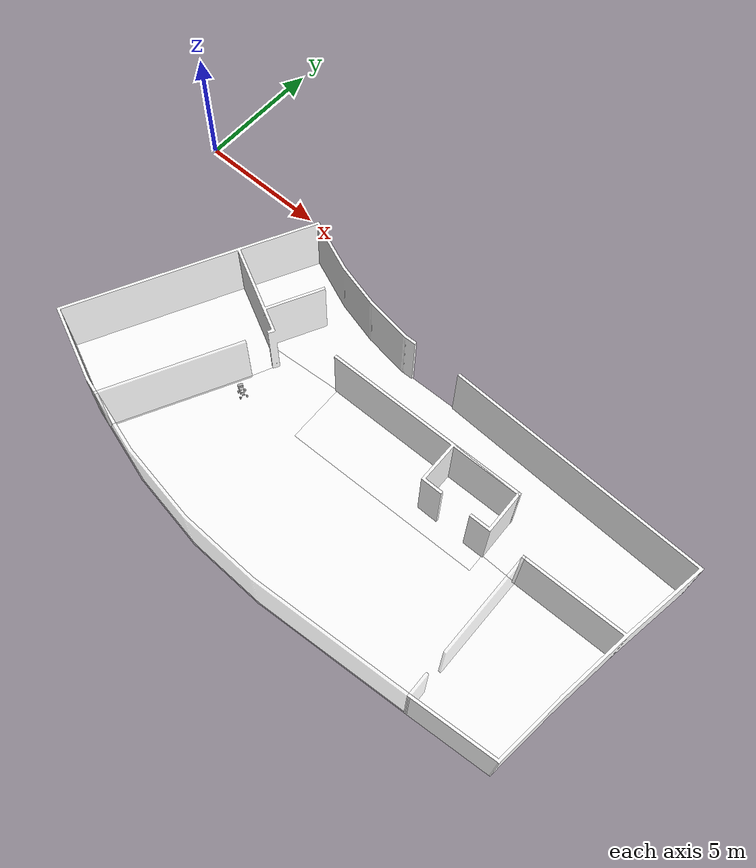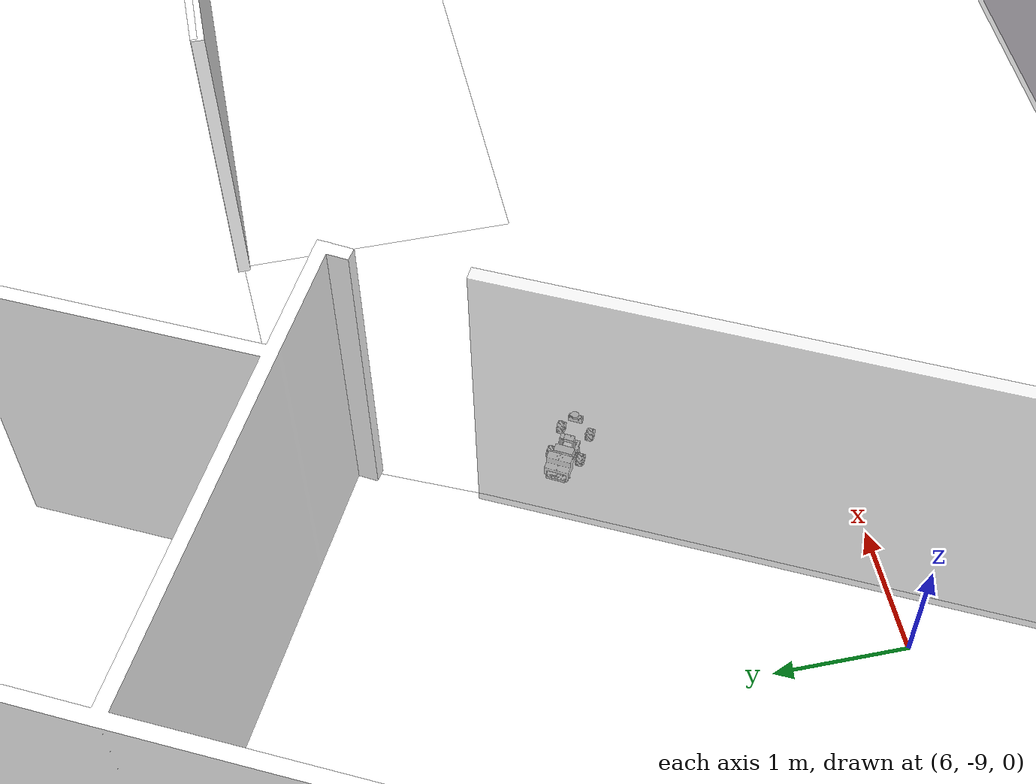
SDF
<sdf version="1.7">
 <world name="office">
  <physics name="1ms" type="ignored">
   <max_step_size>0.001</max_step_size>
   <real_time_factor>1.0</real_time_factor>
  </physics>
  <plugin filename="ignition-gazebo-physics-system" name="ignition::gazebo::systems::Physics"/>
  <plugin filename="libignition-gazebo-sensors-system.so" name="ignition::gazebo::systems::Sensors">
   <render_engine>ogre2</render_engine>
  </plugin>
  <plugin filename="ignition-gazebo-user-commands-system" name="ignition::gazebo::systems::UserCommands"/>
  <plugin filename="ignition-gazebo-scene-broadcaster-system" name="ignition::gazebo::systems::SceneBroadcaster"/>
  <plugin filename="libignition-gazebo-contact-system.so" name="ignition::gazebo::systems::Contact"/>
  <scene><ambient>1 1 1</ambient><background>0.8 0.8 0.8</background><grid>false</grid></scene>
  <light type="directional" name="sun">
   <pose>0 0 10 0 0 0</pose>
   <diffuse>1 1 1 1</diffuse>
   <specular>0.2 0.2 0.2 1</specular>
   <attenuation>
    <range>1000</range>
    <constant>0.09</constant>
    <linear>0.001</linear>
    <quadratic>0.001</quadratic>
   </attenuation>
   <direction>-0.5 0.1 -0.9</direction>
  </light>
  <include><name>building_L1</name><uri>model://building_L1</uri></include>
  <include>
   <name>mecanum_bot</name>
   <uri>model://mecanum_bot</uri>
   <pose>8.200888937515385 -7.009328201179764 0.1 0 0 -0.5159</pose>
   <static>false</static>
  </include>
 </world>
</sdf>

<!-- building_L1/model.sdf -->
<sdf version="1.7">
  <model name="building_L1">
    <static>true</static>
    <link name="floor_1">
      <visual name="visual">
        <geometry>
          <mesh>
            <uri>model://building_L1/meshes/floor_1.obj</uri>
          </mesh>
        </geometry>
        <material>
          <diffuse>1.0 1.0 1.0</diffuse>
          <specular>0.1 0.1 0.1</specular>
          <pbr>
            <metal>
              <metalness>0.0</metalness>
              <albedo_map>model://building_L1/meshes/blue_linoleum_high_contrast.png</albedo_map>
            </metal>
          </pbr>
          <script>
            <uri>model://building_L1/meshes/</uri>
            <name>floor_1_Diffuse</name>
          </script>
        </material>
      </visual>
      <collision name="collision">
        <geometry>
          <mesh>
            <uri>model://building_L1/meshes/floor_1.obj</uri>
          </mesh>
        </geometry>
        <surface>
          <contact>
            <collide_bitmask>0x01</collide_bitmask>
          </contact>
        </surface>
      </collision>
    </link>
    <link name="floor_2">
      <visual name="visual">
        <geometry>
          <mesh>
            <uri>model://building_L1/meshes/floor_2.obj</uri>
          </mesh>
        </geometry>
        <material>
          <diffuse>1.0 1.0 1.0</diffuse>
          <specular>0.1 0.1 0.1</specular>
          <pbr>
            <metal>
              <metalness>0.0</metalness>
              <albedo_map>model://building_L1/meshes/concrete2.png</albedo_map>
            </metal>
          </pbr>
          <script>
            <uri>model://building_L1/meshes/</uri>
            <name>floor_2_Diffuse</name>
          </script>
        </material>
      </visual>
      <collision name="collision">
        <geometry>
          <mesh>
            <uri>model://building_L1/meshes/floor_2.obj</uri>
          </mesh>
        </geometry>
        <surface>
          <contact>
            <collide_bitmask>0x01</collide_bitmask>
          </contact>
        </surface>
      </collision>
    </link>
    <link name="floor_3">
      <visual name="visual">
        <geometry>
          <mesh>
            <uri>model://building_L1/meshes/floor_3.obj</uri>
          </mesh>
        </geometry>
        <material>
          <diffuse>1.0 1.0 1.0</diffuse>
          <specular>0.1 0.1 0.1</specular>
          <pbr>
            <metal>
              <metalness>0.0</metalness>
              <albedo_map>model://building_L1/meshes/blue_linoleum_high_contrast.png</albedo_map>
            </metal>
          </pbr>
          <script>
            <uri>model://building_L1/meshes/</uri>
            <name>floor_3_Diffuse</name>
          </script>
        </material>
      </visual>
      <collision name="collision">
        <geometry>
          <mesh>
            <uri>model://building_L1/meshes/floor_3.obj</uri>
          </mesh>
        </geometry>
        <surface>
          <contact>
            <collide_bitmask>0x01</collide_bitmask>
          </contact>
        </surface>
      </collision>
    </link>
    <link name="floor_4">
      <visual name="visual">
        <geometry>
          <mesh>
            <uri>model://building_L1/meshes/floor_4.obj</uri>
          </mesh>
        </geometry>
        <material>
          <diffuse>1.0 1.0 1.0</diffuse>
          <specular>0.1 0.1 0.1</specular>
          <pbr>
            <metal>
              <metalness>0.0</metalness>
              <albedo_map>model://building_L1/meshes/black_concrete.png</albedo_map>
            </metal>
          </pbr>
          <script>
            <uri>model://building_L1/meshes/</uri>
            <name>floor_4_Diffuse</name>
          </script>
        </material>
      </visual>
      <collision name="collision">
        <geometry>
          <mesh>
            <uri>model://building_L1/meshes/floor_4.obj</uri>
          </mesh>
        </geometry>
        <surface>
          <contact>
            <collide_bitmask>0x01</collide_bitmask>
          </contact>
        </surface>
      </collision>
    </link>
    <link name="wall_1">
      <visual name="wall_1">
        <geometry>
          <mesh>
            <uri>model://building_L1/meshes/wall_1.obj</uri>
          </mesh>
        </geometry>
        <transparency>0.0</transparency>
        <material>
          <diffuse>1.0 1.0 1.0</diffuse>
          <specular>0.1 0.1 0.1</specular>
          <pbr>
            <metal>
              <metalness>0.0</metalness>
              <albedo_map>model://building_L1/meshes/wall_white.png</albedo_map>
            </metal>
          </pbr>
          <script>
            <uri>model://building_L1/meshes/</uri>
            <name>wall_1_Diffuse</name>
          </script>
        </material>
      </visual>
      <collision name="collision">
        <geometry>
          <mesh>
            <uri>model://building_L1/meshes/wall_1.obj</uri>
          </mesh>
        </geometry>
        <surface>
          <contact>
            <collide_bitmask>0x01</collide_bitmask>
          </contact>
        </surface>
      </collision>
      <pose>2.2104525034268714 -11.594893332298748 0 0 0 0</pose>
    </link>
    <link name="wall_2">
      <visual name="wall_2">
        <geometry>
          <mesh>
            <uri>model://building_L1/meshes/wall_2.obj</uri>
          </mesh>
        </geometry>
        <transparency>0.5</transparency>
        <material>
          <diffuse>1.0 1.0 1.0</diffuse>
          <specular>0.1 0.1 0.1</specular>
          <pbr>
            <metal>
              <metalness>0.0</metalness>
              <albedo_map>model://building_L1/meshes/wall_white.png</albedo_map>
            </metal>
          </pbr>
          <script>
            <uri>model://building_L1/meshes/</uri>
            <name>wall_2_Diffuse</name>
          </script>
        </material>
      </visual>
      <collision name="collision">
        <geometry>
          <mesh>
            <uri>model://building_L1/meshes/wall_2.obj</uri>
          </mesh>
        </geometry>
        <surface>
          <contact>
            <collide_bitmask>0x01</collide_bitmask>
          </contact>
        </surface>
      </collision>
      <pose>5.505273654870084 -12.057908109495912 0 0 0 0</pose>
    </link>
    <link name="wall_3">
      <visual name="wall_3">
        <geometry>
          <mesh>
            <uri>model://building_L1/meshes/wall_3.obj</uri>
          </mesh>
        </geometry>
        <transparency>0.19999999999999996</transparency>
        <material>
          <diffuse>1.0 1.0 1.0</diffuse>
          <specular>0.1 0.1 0.1</specular>
          <pbr>
            <metal>
              <metalness>0.0</metalness>
              <albedo_map>model://building_L1/meshes/wall_white.png</albedo_map>
            </metal>
          </pbr>
          <script>
            <uri>model://building_L1/meshes/</uri>
            <name>wall_3_Diffuse</name>
          </script>
        </material>
      </visual>
      <collision name="collision">
        <geometry>
          <mesh>
            <uri>model://building_L1/meshes/wall_3.obj</uri>
          </mesh>
        </geometry>
        <surface>
          <contact>
            <collide_bitmask>0x01</collide_bitmask>
          </contact>
        </surface>
      </collision>
      <pose>5.499658357842799 -10.921386983607634 0 0 0 0</pose>
    </link>
    <link name="wall_4">
      <visual name="wall_4">
        <geometry>
          <mesh>
            <uri>model://building_L1/meshes/wall_4.obj</uri>
          </mesh>
        </geometry>
        <transparency>0.0</transparency>
        <material>
          <diffuse>1.0 1.0 1.0</diffuse>
          <specular>0.1 0.1 0.1</specular>
          <pbr>
            <metal>
              <metalness>0.0</metalness>
              <albedo_map>model://building_L1/meshes/blue_linoleum_high_contrast.png</albedo_map>
            </metal>
          </pbr>
          <script>
            <uri>model://building_L1/meshes/</uri>
            <name>wall_4_Diffuse</name>
          </script>
        </material>
      </visual>
      <collision name="collision">
        <geometry>
          <mesh>
            <uri>model://building_L1/meshes/wall_4.obj</uri>
          </mesh>
        </geometry>
        <surface>
          <contact>
            <collide_bitmask>0x01</collide_bitmask>
          </contact>
        </surface>
      </collision>
      <pose>10.549150932467981 -4.759113568297709 0 0 0 0</pose>
    </link>
  </model>
</sdf>

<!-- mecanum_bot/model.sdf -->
<sdf version="1.7">
  <model name="mecanum_bot">

    <link name="base_footprint">
    </link>

    <link name="base_link">
      <self_collide>false</self_collide>
      <inertial>
        <pose>-0.0010000044107437 0.0 0.04050000384449959 0.0 0.0 0.0</pose>
        <mass>5</mass>
        <inertia>
          <ixx>0.05</ixx>
          <ixy>0</ixy>
          <ixz>0</ixz>
          <iyy>0.05</iyy>
          <iyz>0</iyz>
          <izz>0.05</izz>
        </inertia>
      </inertial>
      <collision name ="Cube">
        <pose>-0.0010000044107437 0.0 0.04050000384449959 0.0 0.0 0.0</pose>
        <geometry>
          <box>
            <size>0.39200000195503235 0.1939999908208847 0.219000001168251038</size>
          </box>
        </geometry>
      </collision>
      <visual name="base_visual">
        <pose>0 0 0 0 -0 0</pose>
        <geometry>
          <mesh>
            <uri>package://mecanum_bot_description/mecanum_bot/meshes/mecanum_bot_chassis.obj</uri>
            <scale>1 1 1</scale>
          </mesh>
        </geometry>
      </visual>
    </link>

    <link name="front_left_wheel">
      <self_collide>false</self_collide>
      <pose>0.125 0.117 -0.041 0 0 0</pose>
      <inertial>
        <mass>0.2</mass>
        <inertia>
          <ixx>0.0001</ixx>
          <ixy>0</ixy>
          <ixz>0</ixz>
          <iyy>0.0001</iyy>
          <iyz>0</iyz>
          <izz>0.0001</izz>
        </inertia>
      </inertial>
      <visual name="front_left_wheel_visual">
        <pose>0 0 0 0 -0 0</pose>
        <geometry>
          <mesh>
            <uri>package://mecanum_bot_description/mecanum_bot/meshes/mecanum_bot_wheel.obj</uri>
            <scale>1 1 1</scale>
          </mesh>
        </geometry>
      </visual>
      <collision name="front_left_wheel_collision">
        <geometry>
          <sphere>
            <radius>0.05</radius>
          </sphere>
        </geometry>
        <surface>
          <friction>
            <ode>
              <mu>10.0</mu>
              <mu2>0.0</mu2>
              <slip1>0.0</slip1>
              <slip2>0.0</slip2>
              <fdir1 ignition:expressed_in="base_link">1 -1 0</fdir1>
            </ode>
          </friction>
          <contact>
            <ode>
              <soft_cfm>0</soft_cfm>
              <soft_erp>0.2</soft_erp>
              <kp>1e+5</kp>
              <kd>1</kd>
              <max_vel>0.01</max_vel>
              <min_depth>0.0001</min_depth>
            </ode>
          </contact>
        </surface>
      </collision>
    </link>

    <link name="rear_left_wheel">
      <self_collide>false</self_collide>
      <pose>-0.125 0.117 -0.041 0 0 0</pose>
      <inertial>
        <mass>0.2</mass>
        <inertia>
          <ixx>0.0001</ixx>
          <ixy>0</ixy>
          <ixz>0</ixz>
          <iyy>0.0001</iyy>
          <iyz>0</iyz>
          <izz>0.0001</izz>
        </inertia>
      </inertial>
      <visual name="rear_left_wheel_visual">
        <pose>0 0 0 0 -0 0</pose>
        <geometry>
          <mesh>
            <uri>package://mecanum_bot_description/mecanum_bot/meshes/mecanum_bot_wheel.obj</uri>
            <scale>1 1 1</scale>
          </mesh>
        </geometry>
      </visual>
      <collision name="rear_left_wheel_collision">
        <geometry>
          <sphere>
            <radius>0.05</radius>
          </sphere>
        </geometry>
        <surface>
          <friction>
            <ode>
              <mu>10.0</mu>
              <mu2>0.0</mu2>
              <slip1>0.0</slip1>
              <slip2>0.0</slip2>
              <fdir1 ignition:expressed_in="base_link">1 1 0</fdir1>
            </ode>
          </friction>
          <contact>
            <ode>
              <soft_cfm>0</soft_cfm>
              <soft_erp>0.2</soft_erp>
              <kp>1e+5</kp>
              <kd>1</kd>
              <max_vel>0.01</max_vel>
              <min_depth>0.0001</min_depth>
            </ode>
          </contact>
        </surface>
      </collision>
    </link>

    <link name="front_right_wheel">
      <self_collide>false</self_collide>
      <pose>0.125 -0.117 -0.041 0 0 0</pose>
      <inertial>
        <mass>0.2</mass>
        <inertia>
          <ixx>0.0001</ixx>
          <ixy>0</ixy>
          <ixz>0</ixz>
          <iyy>0.0001</iyy>
          <iyz>0</iyz>
          <izz>0.0001</izz>
        </inertia>
      </inertial>
      <visual name="front_right_wheel_visual">
        <pose>0 0 0 0 0 -3.14</pose>
        <geometry>
          <mesh>
            <uri>package://mecanum_bot_description/mecanum_bot/meshes/mecanum_bot_wheel.obj</uri>
            <scale>1 1 1</scale>
          </mesh>
        </geometry>
      </visual>
      <collision name="front_right_wheel_collision">
        <geometry>
          <sphere>
            <radius>0.05</radius>
          </sphere>
        </geometry>
        <surface>
          <friction>
            <ode>
              <mu>10.0</mu>
              <mu2>0.0</mu2>
              <slip1>0.0</slip1>
              <slip2>0.0</slip2>
              <fdir1 ignition:expressed_in="base_link">1 1 0</fdir1>
            </ode>
          </friction>
          <contact>
            <ode>
              <soft_cfm>0</soft_cfm>
              <soft_erp>0.2</soft_erp>
              <kp>1e+5</kp>
              <kd>1</kd>
              <max_vel>0.01</max_vel>
              <min_depth>0.0001</min_depth>
            </ode>
          </contact>
        </surface>
      </collision>
    </link>

    <link name="rear_right_wheel">
      <self_collide>false</self_collide>
      <pose>-0.125 -0.117 -0.041 0 0 0</pose>
      <inertial>
        <mass>0.2</mass>
        <inertia>
          <ixx>0.0001</ixx>
          <ixy>0</ixy>
          <ixz>0</ixz>
          <iyy>0.0001</iyy>
          <iyz>0</iyz>
          <izz>0.0001</izz>
        </inertia>
      </inertial>
      <visual name="rear_right_wheel_visual">
        <pose>0 0 0 0 0 -3.14</pose>
        <geometry>
          <mesh>
            <uri>package://mecanum_bot_description/mecanum_bot/meshes/mecanum_bot_wheel.obj</uri>
            <scale>1 1 1</scale>
          </mesh>
        </geometry>
      </visual>
      <collision name="rear_right_wheel_collision">
        <geometry>
          <sphere>
            <radius>0.05</radius>
          </sphere>
        </geometry>
        <surface>
          <friction>
            <ode>
              <mu>10.0</mu>
              <mu2>0.0</mu2>
              <slip1>0.0</slip1>
              <slip2>0.0</slip2>
              <fdir1 ignition:expressed_in="base_link">1 -1 0</fdir1>
            </ode>
          </friction>
          <contact>
            <ode>
              <soft_cfm>0</soft_cfm>
              <soft_erp>0.2</soft_erp>
              <kp>1e+5</kp>
              <kd>1</kd>
              <max_vel>0.01</max_vel>
              <min_depth>0.0001</min_depth>
            </ode>
          </contact>
        </surface>
      </collision>
    </link>

    <link name="base_scan">
      <pose>0.1 0. 0.1924 0 0 0</pose>
      <inertial>
        <inertia>
          <ixx>0.0001</ixx>
          <ixy>0.000</ixy>
          <ixz>0.000</ixz>
          <iyy>0.0001</iyy>
          <iyz>0.000</iyz>
          <izz>0.0001</izz>
        </inertia>
        <mass>0.125</mass>
      </inertial>
      <collision name="lidar_sensor_collision">
        <geometry>
          <box>
            <size>0.06041127070784569 0.09593304991722107 0.0502999983727932</size>
          </box>
        </geometry>
      </collision>
      <visual name="lidar_sensor_visual">
        <geometry>
          <mesh>
            <uri>package://mecanum_bot_description/mecanum_bot/meshes/ydlidar_x2l.obj</uri>
            <scale>1.0 1.0 1.0</scale>
          </mesh>
        </geometry>
      </visual>
      <sensor name="ydlidar_x2l" type="gpu_lidar">
        <always_on>true</always_on>
        <gz_frame_id>base_scan</gz_frame_id>
        <topic>scan</topic>
        <update_rate>8</update_rate>
        <visualize>true</visualize>
        <lidar>
          <scan>
            <horizontal>
              <samples>360</samples>
              <resolution>1.000000</resolution>
              <min_angle>-3.14</min_angle>
              <max_angle>3.14</max_angle>
            </horizontal>
          </scan>
          <range>
            <min>0.08</min>
            <max>12.0</max>
            <resolution>0.015000</resolution>
          </range>
          <noise>
            <type>gaussian</type>
            <mean>0.0</mean>
            <stddev>0.01</stddev>
          </noise>
        </lidar>
      </sensor>
    </link>

    <link name="oak-d_frame">
      <pose>0.143 0.0 0.136 0 0 0</pose>
      <inertial>
        <mass>0.1</mass>
      </inertial>
      <collision name="collision">
        <pose>-0.0165 0.0 -0.01525 0 0 0</pose>
        <geometry>
          <box>
            <size>0.033 0.11 0.054</size>
          </box>
        </geometry>
      </collision>
      <visual name="visual">
        <pose>-0.0165 0.0 -0.01525 0 0 0</pose>
        <geometry>
          <box>
            <size>0.033 0.11 0.054</size>
          </box>
        </geometry>
        <material name="black">
            <color rgba="0 0 0 1"/>
        </material>
      </visual>
      <sensor name="rgbd_camera" type="rgbd_camera">
        <camera>
          <horizontal_fov>1.204</horizontal_fov>
          <image>
            <width>1280</width>
            <height>720</height>
            <format>B8G8R8</format>
          </image>
          <clip>
            <near>0.1</near>
            <far>100</far>
          </clip>
          <depth_camera>
            <clip>
              <near>0.012</near>
              <far>10</far>
            </clip>
          </depth_camera>
          <noise>
            <type>gaussian</type>
            <mean>0.0</mean>
            <stddev>0.01</stddev>
          </noise>
          <distortion>
            <k1>0.080921</k1>
            <k2>-0.244505</k2>
            <k3>0.006909</k3>
            <p1>0.015070</p1>
            <p2>0.000000</p2>
            <center>0.5 0.5</center>
          </distortion>
          <lens>
            <type>stereographic</type>
            <intrinsics>
              <fx>1049.904541</fx>
              <fy>1048.576171</fy>
              <cx>635.746276</cx>
              <cy>364.500946</cy>
              <s>0.000000</s>
            </intrinsics>
          </lens>
        </camera>
        <always_on>1</always_on>
        <update_rate>15</update_rate>
        <visualize>true</visualize>
        <topic>rgbd_camera</topic>
        <enable_metrics>true</enable_metrics>
        <gz_frame_id>oak_rgb_camera_optical_frame</gz_frame_id>
      </sensor>
    </link>

    <joint name="front_left_wheel_joint" type="revolute">
      <parent>base_link</parent>
      <child>front_left_wheel</child>
      <axis>
        <xyz>0 1 0</xyz>
        <limit>
          <lower>-1.79769e+308</lower>
          <upper>1.79769e+308</upper>
        </limit>
      </axis>
    </joint>

    <joint name="rear_left_wheel_joint" type="revolute">
      <parent>base_link</parent>
      <child>rear_left_wheel</child>
      <axis>
        <xyz>0 1 0</xyz>
        <limit>
          <lower>-1.79769e+308</lower>
          <upper>1.79769e+308</upper>
        </limit>
      </axis>
    </joint>

    <joint name="front_right_wheel_joint" type="revolute">
      <parent>base_link</parent>
      <child>front_right_wheel</child>
      <axis>
        <xyz>0 1 0</xyz>
        <limit>
          <lower>-1.79769e+308</lower>
          <upper>1.79769e+308</upper>
        </limit>
      </axis>
    </joint>

    <joint name="rear_right_wheel_joint" type="revolute">
      <parent>base_link</parent>
      <child>rear_right_wheel</child>
      <axis>
        <xyz>0 1 0</xyz>
        <limit>
          <lower>-1.79769e+308</lower>
          <upper>1.79769e+308</upper>
        </limit>
      </axis>
    </joint>

    <joint name="base_scan_joint" type="fixed">
      <parent>base_link</parent>
      <child>base_scan</child>
    </joint>

    <joint name="base_link_joint" type="fixed">
      <parent>base_footprint</parent>
      <child>base_link</child>
    </joint>

    <joint name="base_link_oakd_joint" type="fixed">
      <parent>base_link</parent>
      <child>oak-d_frame</child>
    </joint>

    <!-- The MecanumDrive plugin has not implemented any odometry publishing logic. -->
    <plugin
      filename="ignition-gazebo-mecanum-drive-system"
      name="ignition::gazebo::systems::MecanumDrive">
      <front_left_joint>front_left_wheel_joint</front_left_joint>
      <front_right_joint>front_right_wheel_joint</front_right_joint>
      <back_left_joint>rear_left_wheel_joint</back_left_joint>
      <back_right_joint>rear_right_wheel_joint</back_right_joint>
      <wheel_separation>0.234</wheel_separation>
      <wheelbase>0.25</wheelbase>
      <wheel_radius>0.048</wheel_radius>
      <min_acceleration>-0.5</min_acceleration>
      <max_acceleration>0.5</max_acceleration>
    </plugin>

    <plugin
      filename="ignition-gazebo-odometry-publisher-system"
      name="ignition::gazebo::systems::OdometryPublisher">
      <robot_base_frame>base_footprint</robot_base_frame>
      <odom_frame>wheel_odom</odom_frame>
      <odom_publish_frequency>50</odom_publish_frequency>
      <gaussian_noise>0.1</gaussian_noise>
    </plugin>

    <plugin
      filename="ignition-gazebo-joint-state-publisher-system"
      name="ignition::gazebo::systems::JointStatePublisher">
    </plugin>

  </model>
</sdf>
